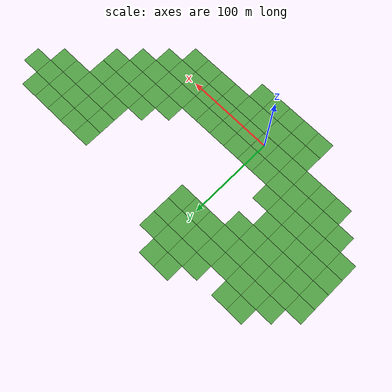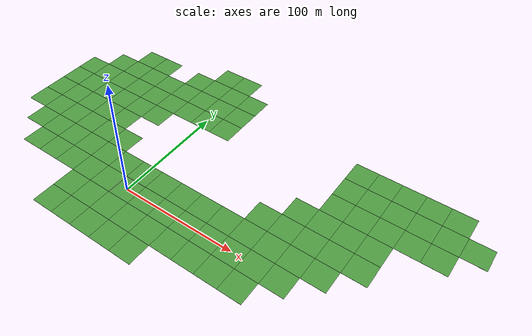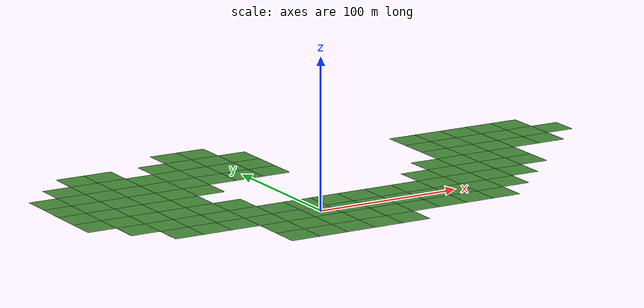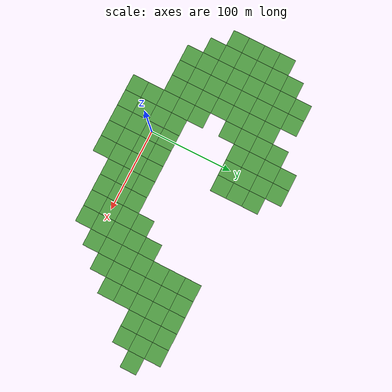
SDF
<sdf version="1.4">
 <world name="valley_town_2">
  <scene>
   <ambient>0.2 0.2 0.2 1.0</ambient>
   <grid>false</grid>
   <sky><clouds><speed>0.1</speed><mean_size>0.1</mean_size></clouds></sky>
  </scene>
  <physics type="ode">
   <gravity>0 0 -9.81</gravity>
   <ode>
    <solver>
     <use_dynamic_moi_rescaling>true</use_dynamic_moi_rescaling>
     <type>quick</type>
     <iters>50</iters>
     <sor>1.4</sor>
    </solver>
    <constraints>
     <cfm>0.0</cfm>
     <erp>0.2</erp>
     <contact_max_correcting_vel>100.0</contact_max_correcting_vel>
     <contact_surface_layer>0.0</contact_surface_layer>
    </constraints>
   </ode>
   <real_time_update_rate>1000</real_time_update_rate>
   <max_step_size>0.001</max_step_size>
  </physics>
  <light type="directional" name="sun">
   <pose>0 0 100 0 0 0</pose>
   <diffuse>0.8 0.8 0.8 1</diffuse>
   <specular>0.9 0.9 0.9 1</specular>
   <attenuation>
    <range>1000</range>
    <constant>0.9</constant>
    <linear>0.01</linear>
    <quadratic>0.001</quadratic>
   </attenuation>
   <direction>0.2 0.2 -0.9</direction>
  </light>
  <include><uri>model://grass_plane_2</uri></include>
  <model name="road_boxes">
   <static>true</static>
   <link name="link">
    <collision name="collision_1">
     <pose>-25.5 5.1 0 0 0 -0.197</pose>
     <geometry><box><size>51 7.34 0.02</size></box></geometry>
     <surface><friction><ode><mu>100</mu><mu2>50</mu2></ode></friction></surface>
    </collision>
    <collision name="collision_2">
     <pose>-75 30 0 0 0 -0.6747</pose>
     <geometry><box><size>66.0 7.34 0.02</size></box></geometry>
     <surface><friction><ode><mu>100</mu><mu2>50</mu2></ode></friction></surface>
    </collision>
    <collision name="collision_3">
     <pose>-100 76 0 0 0 0</pose>
     <geometry><box><size>7.34 56 0.02</size></box></geometry>
     <surface><friction><ode><mu>100</mu><mu2>50</mu2></ode></friction></surface>
    </collision>
    <collision name="collision_4">
     <pose>-50 115 0 0 0 0.291</pose>
     <geometry><box><size>105 7.34 0.02</size></box></geometry>
     <surface><friction><ode><mu>100</mu><mu2>50</mu2></ode></friction></surface>
    </collision>
    <collision name="collision_5">
     <pose>-5 135 0 0 0 1.8505</pose>
     <geometry><box><size>6 5 0.02</size></box></geometry>
     <surface><friction><ode><mu>100</mu><mu2>50</mu2></ode></friction></surface>
    </collision>
   </link>
  </model>
 </world>
</sdf>

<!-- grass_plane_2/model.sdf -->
<sdf version='1.4'>
  <model name='grass_plane_2'>
    <static>true</static>
    <link name='link'>
      <collision name='collision'>
        <geometry>
          <plane>
            <normal>0 0 1</normal>
            <size>500 500</size>
          </plane>
        </geometry>
        <surface>
          <friction>
            <ode>
              <mu>0.5</mu>
              <mu2>.5</mu2>
            </ode>
          </friction>
        </surface>
      </collision>

      <visual name='visual_1'>
        <pose>0 0 0 0 0 0</pose>
        <cast_shadows>false</cast_shadows>
        <geometry>
          <plane>
            <normal>0 0 1</normal>
            <size>20 20</size>
          </plane>
        </geometry>
        <material>
          <script>
            <uri>model://grass_plane_1/materials/scripts</uri>
            <uri>model://grass_plane_1/materials/textures</uri>
            <name>vrc/grass</name>
          </script>
        </material>
      </visual>
      <visual name='visual_2'>
        <pose>0 100 0 0 0 0</pose>
        <cast_shadows>false</cast_shadows>
        <geometry>
          <plane>
            <normal>0 0 1</normal>
            <size>20 20</size>
          </plane>
        </geometry>
        <material>
          <script>
            <uri>model://grass_plane_1/materials/scripts</uri>
            <uri>model://grass_plane_1/materials/textures</uri>
            <name>vrc/grass</name>
          </script>
        </material>
      </visual>
      <visual name='visual_3'>
        <pose>0 120 0 0 0 0</pose>
        <cast_shadows>false</cast_shadows>
        <geometry>
          <plane>
            <normal>0 0 1</normal>
            <size>20 20</size>
          </plane>
        </geometry>
        <material>
          <script>
            <uri>model://grass_plane_1/materials/scripts</uri>
            <uri>model://grass_plane_1/materials/textures</uri>
            <name>vrc/grass</name>
          </script>
        </material>
      </visual>
      <visual name='visual_4'>
        <pose>0 140 0 0 0 0</pose>
        <cast_shadows>false</cast_shadows>
        <geometry>
          <plane>
            <normal>0 0 1</normal>
            <size>20 20</size>
          </plane>
        </geometry>
        <material>
          <script>
            <uri>model://grass_plane_1/materials/scripts</uri>
            <uri>model://grass_plane_1/materials/textures</uri>
            <name>vrc/grass</name>
          </script>
        </material>
      </visual>
      <visual name='visual_5'>
        <pose>0 160 0 0 0 0</pose>
        <cast_shadows>false</cast_shadows>
        <geometry>
          <plane>
            <normal>0 0 1</normal>
            <size>20 20</size>
          </plane>
        </geometry>
        <material>
          <script>
            <uri>model://grass_plane_1/materials/scripts</uri>
            <uri>model://grass_plane_1/materials/textures</uri>
            <name>vrc/grass</name>
          </script>
        </material>
      </visual>
      <visual name='visual_6'>
        <pose>0 20 0 0 0 0</pose>
        <cast_shadows>false</cast_shadows>
        <geometry>
          <plane>
            <normal>0 0 1</normal>
            <size>20 20</size>
          </plane>
        </geometry>
        <material>
          <script>
            <uri>model://grass_plane_1/materials/scripts</uri>
            <uri>model://grass_plane_1/materials/textures</uri>
            <name>vrc/grass</name>
          </script>
        </material>
      </visual>
      <visual name='visual_7'>
        <pose>0 -20 0 0 0 0</pose>
        <cast_shadows>false</cast_shadows>
        <geometry>
          <plane>
            <normal>0 0 1</normal>
            <size>20 20</size>
          </plane>
        </geometry>
        <material>
          <script>
            <uri>model://grass_plane_1/materials/scripts</uri>
            <uri>model://grass_plane_1/materials/textures</uri>
            <name>vrc/grass</name>
          </script>
        </material>
      </visual>
      <visual name='visual_8'>
        <pose>0 -40 0 0 0 0</pose>
        <cast_shadows>false</cast_shadows>
        <geometry>
          <plane>
            <normal>0 0 1</normal>
            <size>20 20</size>
          </plane>
        </geometry>
        <material>
          <script>
            <uri>model://grass_plane_1/materials/scripts</uri>
            <uri>model://grass_plane_1/materials/textures</uri>
            <name>vrc/grass</name>
          </script>
        </material>
      </visual>
      <visual name='visual_9'>
        <pose>-100 0 0 0 0 0</pose>
        <cast_shadows>false</cast_shadows>
        <geometry>
          <plane>
            <normal>0 0 1</normal>
            <size>20 20</size>
          </plane>
        </geometry>
        <material>
          <script>
            <uri>model://grass_plane_1/materials/scripts</uri>
            <uri>model://grass_plane_1/materials/textures</uri>
            <name>vrc/grass</name>
          </script>
        </material>
      </visual>
      <visual name='visual_10'>
        <pose>100 0 0 0 0 0</pose>
        <cast_shadows>false</cast_shadows>
        <geometry>
          <plane>
            <normal>0 0 1</normal>
            <size>20 20</size>
          </plane>
        </geometry>
        <material>
          <script>
            <uri>model://grass_plane_1/materials/scripts</uri>
            <uri>model://grass_plane_1/materials/textures</uri>
            <name>vrc/grass</name>
          </script>
        </material>
      </visual>
      <visual name='visual_11'>
        <pose>-100 100 0 0 0 0</pose>
        <cast_shadows>false</cast_shadows>
        <geometry>
          <plane>
            <normal>0 0 1</normal>
            <size>20 20</size>
          </plane>
        </geometry>
        <material>
          <script>
            <uri>model://grass_plane_1/materials/scripts</uri>
            <uri>model://grass_plane_1/materials/textures</uri>
            <name>vrc/grass</name>
          </script>
        </material>
      </visual>
      <visual name='visual_12'>
        <pose>-100 120 0 0 0 0</pose>
        <cast_shadows>false</cast_shadows>
        <geometry>
          <plane>
            <normal>0 0 1</normal>
            <size>20 20</size>
          </plane>
        </geometry>
        <material>
          <script>
            <uri>model://grass_plane_1/materials/scripts</uri>
            <uri>model://grass_plane_1/materials/textures</uri>
            <name>vrc/grass</name>
          </script>
        </material>
      </visual>
      <visual name='visual_13'>
        <pose>-100 140 0 0 0 0</pose>
        <cast_shadows>false</cast_shadows>
        <geometry>
          <plane>
            <normal>0 0 1</normal>
            <size>20 20</size>
          </plane>
        </geometry>
        <material>
          <script>
            <uri>model://grass_plane_1/materials/scripts</uri>
            <uri>model://grass_plane_1/materials/textures</uri>
            <name>vrc/grass</name>
          </script>
        </material>
      </visual>
      <visual name='visual_14'>
        <pose>-100 20 0 0 0 0</pose>
        <cast_shadows>false</cast_shadows>
        <geometry>
          <plane>
            <normal>0 0 1</normal>
            <size>20 20</size>
          </plane>
        </geometry>
        <material>
          <script>
            <uri>model://grass_plane_1/materials/scripts</uri>
            <uri>model://grass_plane_1/materials/textures</uri>
            <name>vrc/grass</name>
          </script>
        </material>
      </visual>
      <visual name='visual_15'>
        <pose>100 20 0 0 0 0</pose>
        <cast_shadows>false</cast_shadows>
        <geometry>
          <plane>
            <normal>0 0 1</normal>
            <size>20 20</size>
          </plane>
        </geometry>
        <material>
          <script>
            <uri>model://grass_plane_1/materials/scripts</uri>
            <uri>model://grass_plane_1/materials/textures</uri>
            <name>vrc/grass</name>
          </script>
        </material>
      </visual>
      <visual name='visual_16'>
        <pose>100 -20 0 0 0 0</pose>
        <cast_shadows>false</cast_shadows>
        <geometry>
          <plane>
            <normal>0 0 1</normal>
            <size>20 20</size>
          </plane>
        </geometry>
        <material>
          <script>
            <uri>model://grass_plane_1/materials/scripts</uri>
            <uri>model://grass_plane_1/materials/textures</uri>
            <name>vrc/grass</name>
          </script>
        </material>
      </visual>
      <visual name='visual_17'>
        <pose>-100 40 0 0 0 0</pose>
        <cast_shadows>false</cast_shadows>
        <geometry>
          <plane>
            <normal>0 0 1</normal>
            <size>20 20</size>
          </plane>
        </geometry>
        <material>
          <script>
            <uri>model://grass_plane_1/materials/scripts</uri>
            <uri>model://grass_plane_1/materials/textures</uri>
            <name>vrc/grass</name>
          </script>
        </material>
      </visual>
      <visual name='visual_18'>
        <pose>100 40 0 0 0 0</pose>
        <cast_shadows>false</cast_shadows>
        <geometry>
          <plane>
            <normal>0 0 1</normal>
            <size>20 20</size>
          </plane>
        </geometry>
        <material>
          <script>
            <uri>model://grass_plane_1/materials/scripts</uri>
            <uri>model://grass_plane_1/materials/textures</uri>
            <name>vrc/grass</name>
          </script>
        </material>
      </visual>
      <visual name='visual_19'>
        <pose>-100 60 0 0 0 0</pose>
        <cast_shadows>false</cast_shadows>
        <geometry>
          <plane>
            <normal>0 0 1</normal>
            <size>20 20</size>
          </plane>
        </geometry>
        <material>
          <script>
            <uri>model://grass_plane_1/materials/scripts</uri>
            <uri>model://grass_plane_1/materials/textures</uri>
            <name>vrc/grass</name>
          </script>
        </material>
      </visual>
      <visual name='visual_20'>
        <pose>-100 80 0 0 0 0</pose>
        <cast_shadows>false</cast_shadows>
        <geometry>
          <plane>
            <normal>0 0 1</normal>
            <size>20 20</size>
          </plane>
        </geometry>
        <material>
          <script>
            <uri>model://grass_plane_1/materials/scripts</uri>
            <uri>model://grass_plane_1/materials/textures</uri>
            <name>vrc/grass</name>
          </script>
        </material>
      </visual>
      <visual name='visual_21'>
        <pose>120 0 0 0 0 0</pose>
        <cast_shadows>false</cast_shadows>
        <geometry>
          <plane>
            <normal>0 0 1</normal>
            <size>20 20</size>
          </plane>
        </geometry>
        <material>
          <script>
            <uri>model://grass_plane_1/materials/scripts</uri>
            <uri>model://grass_plane_1/materials/textures</uri>
            <name>vrc/grass</name>
          </script>
        </material>
      </visual>
      <visual name='visual_22'>
        <pose>-120 100 0 0 0 0</pose>
        <cast_shadows>false</cast_shadows>
        <geometry>
          <plane>
            <normal>0 0 1</normal>
            <size>20 20</size>
          </plane>
        </geometry>
        <material>
          <script>
            <uri>model://grass_plane_1/materials/scripts</uri>
            <uri>model://grass_plane_1/materials/textures</uri>
            <name>vrc/grass</name>
          </script>
        </material>
      </visual>
      <visual name='visual_23'>
        <pose>-120 120 0 0 0 0</pose>
        <cast_shadows>false</cast_shadows>
        <geometry>
          <plane>
            <normal>0 0 1</normal>
            <size>20 20</size>
          </plane>
        </geometry>
        <material>
          <script>
            <uri>model://grass_plane_1/materials/scripts</uri>
            <uri>model://grass_plane_1/materials/textures</uri>
            <name>vrc/grass</name>
          </script>
        </material>
      </visual>
      <visual name='visual_24'>
        <pose>-120 20 0 0 0 0</pose>
        <cast_shadows>false</cast_shadows>
        <geometry>
          <plane>
            <normal>0 0 1</normal>
            <size>20 20</size>
          </plane>
        </geometry>
        <material>
          <script>
            <uri>model://grass_plane_1/materials/scripts</uri>
            <uri>model://grass_plane_1/materials/textures</uri>
            <name>vrc/grass</name>
          </script>
        </material>
      </visual>
      <visual name='visual_25'>
        <pose>120 20 0 0 0 0</pose>
        <cast_shadows>false</cast_shadows>
        <geometry>
          <plane>
            <normal>0 0 1</normal>
            <size>20 20</size>
          </plane>
        </geometry>
        <material>
          <script>
            <uri>model://grass_plane_1/materials/scripts</uri>
            <uri>model://grass_plane_1/materials/textures</uri>
            <name>vrc/grass</name>
          </script>
        </material>
      </visual>
      <visual name='visual_26'>
        <pose>120 -20 0 0 0 0</pose>
        <cast_shadows>false</cast_shadows>
        <geometry>
          <plane>
            <normal>0 0 1</normal>
            <size>20 20</size>
          </plane>
        </geometry>
        <material>
          <script>
            <uri>model://grass_plane_1/materials/scripts</uri>
            <uri>model://grass_plane_1/materials/textures</uri>
            <name>vrc/grass</name>
          </script>
        </material>
      </visual>
      <visual name='visual_27'>
        <pose>-120 40 0 0 0 0</pose>
        <cast_shadows>false</cast_shadows>
        <geometry>
          <plane>
            <normal>0 0 1</normal>
            <size>20 20</size>
          </plane>
        </geometry>
        <material>
          <script>
            <uri>model://grass_plane_1/materials/scripts</uri>
            <uri>model://grass_plane_1/materials/textures</uri>
            <name>vrc/grass</name>
          </script>
        </material>
      </visual>
      <visual name='visual_28'>
        <pose>120 40 0 0 0 0</pose>
        <cast_shadows>false</cast_shadows>
        <geometry>
          <plane>
            <normal>0 0 1</normal>
            <size>20 20</size>
          </plane>
        </geometry>
        <material>
          <script>
            <uri>model://grass_plane_1/materials/scripts</uri>
            <uri>model://grass_plane_1/materials/textures</uri>
            <name>vrc/grass</name>
          </script>
        </material>
      </visual>
      <visual name='visual_29'>
        <pose>-120 60 0 0 0 0</pose>
        <cast_shadows>false</cast_shadows>
        <geometry>
          <plane>
            <normal>0 0 1</normal>
            <size>20 20</size>
          </plane>
        </geometry>
        <material>
          <script>
            <uri>model://grass_plane_1/materials/scripts</uri>
            <uri>model://grass_plane_1/materials/textures</uri>
            <name>vrc/grass</name>
          </script>
        </material>
      </visual>
      <visual name='visual_30'>
        <pose>120 60 0 0 0 0</pose>
        <cast_shadows>false</cast_shadows>
        <geometry>
          <plane>
            <normal>0 0 1</normal>
            <size>20 20</size>
          </plane>
        </geometry>
        <material>
          <script>
            <uri>model://grass_plane_1/materials/scripts</uri>
            <uri>model://grass_plane_1/materials/textures</uri>
            <name>vrc/grass</name>
          </script>
        </material>
      </visual>
      <visual name='visual_31'>
        <pose>-120 80 0 0 0 0</pose>
        <cast_shadows>false</cast_shadows>
        <geometry>
          <plane>
            <normal>0 0 1</normal>
            <size>20 20</size>
          </plane>
        </geometry>
        <material>
          <script>
            <uri>model://grass_plane_1/materials/scripts</uri>
            <uri>model://grass_plane_1/materials/textures</uri>
            <name>vrc/grass</name>
          </script>
        </material>
      </visual>
      <visual name='visual_32'>
        <pose>140 0 0 0 0 0</pose>
        <cast_shadows>false</cast_shadows>
        <geometry>
          <plane>
            <normal>0 0 1</normal>
            <size>20 20</size>
          </plane>
        </geometry>
        <material>
          <script>
            <uri>model://grass_plane_1/materials/scripts</uri>
            <uri>model://grass_plane_1/materials/textures</uri>
            <name>vrc/grass</name>
          </script>
        </material>
      </visual>
      <visual name='visual_33'>
        <pose>-140 100 0 0 0 0</pose>
        <cast_shadows>false</cast_shadows>
        <geometry>
          <plane>
            <normal>0 0 1</normal>
            <size>20 20</size>
          </plane>
        </geometry>
        <material>
          <script>
            <uri>model://grass_plane_1/materials/scripts</uri>
            <uri>model://grass_plane_1/materials/textures</uri>
            <name>vrc/grass</name>
          </script>
        </material>
      </visual>
      <visual name='visual_34'>
        <pose>140 100 0 0 0 0</pose>
        <cast_shadows>false</cast_shadows>
        <geometry>
          <plane>
            <normal>0 0 1</normal>
            <size>20 20</size>
          </plane>
        </geometry>
        <material>
          <script>
            <uri>model://grass_plane_1/materials/scripts</uri>
            <uri>model://grass_plane_1/materials/textures</uri>
            <name>vrc/grass</name>
          </script>
        </material>
      </visual>
      <visual name='visual_35'>
        <pose>140 120 0 0 0 0</pose>
        <cast_shadows>false</cast_shadows>
        <geometry>
          <plane>
            <normal>0 0 1</normal>
            <size>20 20</size>
          </plane>
        </geometry>
        <material>
          <script>
            <uri>model://grass_plane_1/materials/scripts</uri>
            <uri>model://grass_plane_1/materials/textures</uri>
            <name>vrc/grass</name>
          </script>
        </material>
      </visual>
      <visual name='visual_36'>
        <pose>140 20 0 0 0 0</pose>
        <cast_shadows>false</cast_shadows>
        <geometry>
          <plane>
            <normal>0 0 1</normal>
            <size>20 20</size>
          </plane>
        </geometry>
        <material>
          <script>
            <uri>model://grass_plane_1/materials/scripts</uri>
            <uri>model://grass_plane_1/materials/textures</uri>
            <name>vrc/grass</name>
          </script>
        </material>
      </visual>
      <visual name='visual_37'>
        <pose>-140 40 0 0 0 0</pose>
        <cast_shadows>false</cast_shadows>
        <geometry>
          <plane>
            <normal>0 0 1</normal>
            <size>20 20</size>
          </plane>
        </geometry>
        <material>
          <script>
            <uri>model://grass_plane_1/materials/scripts</uri>
            <uri>model://grass_plane_1/materials/textures</uri>
            <name>vrc/grass</name>
          </script>
        </material>
      </visual>
      <visual name='visual_38'>
        <pose>140 40 0 0 0 0</pose>
        <cast_shadows>false</cast_shadows>
        <geometry>
          <plane>
            <normal>0 0 1</normal>
            <size>20 20</size>
          </plane>
        </geometry>
        <material>
          <script>
            <uri>model://grass_plane_1/materials/scripts</uri>
            <uri>model://grass_plane_1/materials/textures</uri>
            <name>vrc/grass</name>
          </script>
        </material>
      </visual>
      <visual name='visual_39'>
        <pose>-140 60 0 0 0 0</pose>
        <cast_shadows>false</cast_shadows>
        <geometry>
          <plane>
            <normal>0 0 1</normal>
            <size>20 20</size>
          </plane>
        </geometry>
        <material>
          <script>
            <uri>model://grass_plane_1/materials/scripts</uri>
            <uri>model://grass_plane_1/materials/textures</uri>
            <name>vrc/grass</name>
          </script>
        </material>
      </visual>
      <visual name='visual_40'>
        <pose>140 60 0 0 0 0</pose>
        <cast_shadows>false</cast_shadows>
        <geometry>
          <plane>
            <normal>0 0 1</normal>
            <size>20 20</size>
          </plane>
        </geometry>
        <material>
          <script>
            <uri>model://grass_plane_1/materials/scripts</uri>
            <uri>model://grass_plane_1/materials/textures</uri>
            <name>vrc/grass</name>
          </script>
        </material>
      </visual>
      <visual name='visual_41'>
        <pose>-140 80 0 0 0 0</pose>
        <cast_shadows>false</cast_shadows>
        <geometry>
          <plane>
            <normal>0 0 1</normal>
            <size>20 20</size>
          </plane>
        </geometry>
        <material>
          <script>
            <uri>model://grass_plane_1/materials/scripts</uri>
            <uri>model://grass_plane_1/materials/textures</uri>
            <name>vrc/grass</name>
          </script>
        </material>
      </visual>
      <visual name='visual_42'>
        <pose>140 80 0 0 0 0</pose>
        <cast_shadows>false</cast_shadows>
        <geometry>
          <plane>
            <normal>0 0 1</normal>
            <size>20 20</size>
          </plane>
        </geometry>
        <material>
          <script>
            <uri>model://grass_plane_1/materials/scripts</uri>
            <uri>model://grass_plane_1/materials/textures</uri>
            <name>vrc/grass</name>
          </script>
        </material>
      </visual>
      <visual name='visual_43'>
        <pose>160 100 0 0 0 0</pose>
        <cast_shadows>false</cast_shadows>
        <geometry>
          <plane>
            <normal>0 0 1</normal>
            <size>20 20</size>
          </plane>
        </geometry>
        <material>
          <script>
            <uri>model://grass_plane_1/materials/scripts</uri>
            <uri>model://grass_plane_1/materials/textures</uri>
            <name>vrc/grass</name>
          </script>
        </material>
      </visual>
      <visual name='visual_44'>
        <pose>160 120 0 0 0 0</pose>
        <cast_shadows>false</cast_shadows>
        <geometry>
          <plane>
            <normal>0 0 1</normal>
            <size>20 20</size>
          </plane>
        </geometry>
        <material>
          <script>
            <uri>model://grass_plane_1/materials/scripts</uri>
            <uri>model://grass_plane_1/materials/textures</uri>
            <name>vrc/grass</name>
          </script>
        </material>
      </visual>
      <visual name='visual_45'>
        <pose>160 20 0 0 0 0</pose>
        <cast_shadows>false</cast_shadows>
        <geometry>
          <plane>
            <normal>0 0 1</normal>
            <size>20 20</size>
          </plane>
        </geometry>
        <material>
          <script>
            <uri>model://grass_plane_1/materials/scripts</uri>
            <uri>model://grass_plane_1/materials/textures</uri>
            <name>vrc/grass</name>
          </script>
        </material>
      </visual>
      <visual name='visual_46'>
        <pose>160 40 0 0 0 0</pose>
        <cast_shadows>false</cast_shadows>
        <geometry>
          <plane>
            <normal>0 0 1</normal>
            <size>20 20</size>
          </plane>
        </geometry>
        <material>
          <script>
            <uri>model://grass_plane_1/materials/scripts</uri>
            <uri>model://grass_plane_1/materials/textures</uri>
            <name>vrc/grass</name>
          </script>
        </material>
      </visual>
      <visual name='visual_47'>
        <pose>160 60 0 0 0 0</pose>
        <cast_shadows>false</cast_shadows>
        <geometry>
          <plane>
            <normal>0 0 1</normal>
            <size>20 20</size>
          </plane>
        </geometry>
        <material>
          <script>
            <uri>model://grass_plane_1/materials/scripts</uri>
            <uri>model://grass_plane_1/materials/textures</uri>
            <name>vrc/grass</name>
          </script>
        </material>
      </visual>
      <visual name='visual_48'>
        <pose>160 80 0 0 0 0</pose>
        <cast_shadows>false</cast_shadows>
        <geometry>
          <plane>
            <normal>0 0 1</normal>
            <size>20 20</size>
          </plane>
        </geometry>
        <material>
          <script>
            <uri>model://grass_plane_1/materials/scripts</uri>
            <uri>model://grass_plane_1/materials/textures</uri>
            <name>vrc/grass</name>
          </script>
        </material>
      </visual>
      <visual name='visual_49'>
        <pose>180 100 0 0 0 0</pose>
        <cast_shadows>false</cast_shadows>
        <geometry>
          <plane>
            <normal>0 0 1</normal>
            <size>20 20</size>
          </plane>
        </geometry>
        <material>
          <script>
            <uri>model://grass_plane_1/materials/scripts</uri>
            <uri>model://grass_plane_1/materials/textures</uri>
            <name>vrc/grass</name>
          </script>
        </material>
      </visual>
      <visual name='visual_50'>
        <pose>180 120 0 0 0 0</pose>
        <cast_shadows>false</cast_shadows>
        <geometry>
          <plane>
            <normal>0 0 1</normal>
            <size>20 20</size>
          </plane>
        </geometry>
        <material>
          <script>
            <uri>model://grass_plane_1/materials/scripts</uri>
            <uri>model://grass_plane_1/materials/textures</uri>
            <name>vrc/grass</name>
          </script>
        </material>
      </visual>
      <visual name='visual_51'>
        <pose>180 40 0 0 0 0</pose>
        <cast_shadows>false</cast_shadows>
        <geometry>
          <plane>
            <normal>0 0 1</normal>
            <size>20 20</size>
          </plane>
        </geometry>
        <material>
          <script>
            <uri>model://grass_plane_1/materials/scripts</uri>
            <uri>model://grass_plane_1/materials/textures</uri>
            <name>vrc/grass</name>
          </script>
        </material>
      </visual>
      <visual name='visual_52'>
        <pose>180 60 0 0 0 0</pose>
        <cast_shadows>false</cast_shadows>
        <geometry>
          <plane>
            <normal>0 0 1</normal>
            <size>20 20</size>
          </plane>
        </geometry>
        <material>
          <script>
            <uri>model://grass_plane_1/materials/scripts</uri>
            <uri>model://grass_plane_1/materials/textures</uri>
            <name>vrc/grass</name>
          </script>
        </material>
      </visual>
      <visual name='visual_53'>
        <pose>180 80 0 0 0 0</pose>
        <cast_shadows>false</cast_shadows>
        <geometry>
          <plane>
            <normal>0 0 1</normal>
            <size>20 20</size>
          </plane>
        </geometry>
        <material>
          <script>
            <uri>model://grass_plane_1/materials/scripts</uri>
            <uri>model://grass_plane_1/materials/textures</uri>
            <name>vrc/grass</name>
          </script>
        </material>
      </visual>
      <visual name='visual_54'>
        <pose>-20 0 0 0 0 0</pose>
        <cast_shadows>false</cast_shadows>
        <geometry>
          <plane>
            <normal>0 0 1</normal>
            <size>20 20</size>
          </plane>
        </geometry>
        <material>
          <script>
            <uri>model://grass_plane_1/materials/scripts</uri>
            <uri>model://grass_plane_1/materials/textures</uri>
            <name>vrc/grass</name>
          </script>
        </material>
      </visual>
      <visual name='visual_55'>
        <pose>20 0 0 0 0 0</pose>
        <cast_shadows>false</cast_shadows>
        <geometry>
          <plane>
            <normal>0 0 1</normal>
            <size>20 20</size>
          </plane>
        </geometry>
        <material>
          <script>
            <uri>model://grass_plane_1/materials/scripts</uri>
            <uri>model://grass_plane_1/materials/textures</uri>
            <name>vrc/grass</name>
          </script>
        </material>
      </visual>
      <visual name='visual_56'>
        <pose>200 100 0 0 0 0</pose>
        <cast_shadows>false</cast_shadows>
        <geometry>
          <plane>
            <normal>0 0 1</normal>
            <size>20 20</size>
          </plane>
        </geometry>
        <material>
          <script>
            <uri>model://grass_plane_1/materials/scripts</uri>
            <uri>model://grass_plane_1/materials/textures</uri>
            <name>vrc/grass</name>
          </script>
        </material>
      </visual>
      <visual name='visual_57'>
        <pose>200 120 0 0 0 0</pose>
        <cast_shadows>false</cast_shadows>
        <geometry>
          <plane>
            <normal>0 0 1</normal>
            <size>20 20</size>
          </plane>
        </geometry>
        <material>
          <script>
            <uri>model://grass_plane_1/materials/scripts</uri>
            <uri>model://grass_plane_1/materials/textures</uri>
            <name>vrc/grass</name>
          </script>
        </material>
      </visual>
      <visual name='visual_58'>
        <pose>200 80 0 0 0 0</pose>
        <cast_shadows>false</cast_shadows>
        <geometry>
          <plane>
            <normal>0 0 1</normal>
            <size>20 20</size>
          </plane>
        </geometry>
        <material>
          <script>
            <uri>model://grass_plane_1/materials/scripts</uri>
            <uri>model://grass_plane_1/materials/textures</uri>
            <name>vrc/grass</name>
          </script>
        </material>
      </visual>
      <visual name='visual_59'>
        <pose>-20 100 0 0 0 0</pose>
        <cast_shadows>false</cast_shadows>
        <geometry>
          <plane>
            <normal>0 0 1</normal>
            <size>20 20</size>
          </plane>
        </geometry>
        <material>
          <script>
            <uri>model://grass_plane_1/materials/scripts</uri>
            <uri>model://grass_plane_1/materials/textures</uri>
            <name>vrc/grass</name>
          </script>
        </material>
      </visual>
      <visual name='visual_60'>
        <pose>20 100 0 0 0 0</pose>
        <cast_shadows>false</cast_shadows>
        <geometry>
          <plane>
            <normal>0 0 1</normal>
            <size>20 20</size>
          </plane>
        </geometry>
        <material>
          <script>
            <uri>model://grass_plane_1/materials/scripts</uri>
            <uri>model://grass_plane_1/materials/textures</uri>
            <name>vrc/grass</name>
          </script>
        </material>
      </visual>
      <visual name='visual_61'>
        <pose>-20 120 0 0 0 0</pose>
        <cast_shadows>false</cast_shadows>
        <geometry>
          <plane>
            <normal>0 0 1</normal>
            <size>20 20</size>
          </plane>
        </geometry>
        <material>
          <script>
            <uri>model://grass_plane_1/materials/scripts</uri>
            <uri>model://grass_plane_1/materials/textures</uri>
            <name>vrc/grass</name>
          </script>
        </material>
      </visual>
      <visual name='visual_62'>
        <pose>20 120 0 0 0 0</pose>
        <cast_shadows>false</cast_shadows>
        <geometry>
          <plane>
            <normal>0 0 1</normal>
            <size>20 20</size>
          </plane>
        </geometry>
        <material>
          <script>
            <uri>model://grass_plane_1/materials/scripts</uri>
            <uri>model://grass_plane_1/materials/textures</uri>
            <name>vrc/grass</name>
          </script>
        </material>
      </visual>
      <visual name='visual_63'>
        <pose>-20 140 0 0 0 0</pose>
        <cast_shadows>false</cast_shadows>
        <geometry>
          <plane>
            <normal>0 0 1</normal>
            <size>20 20</size>
          </plane>
        </geometry>
        <material>
          <script>
            <uri>model://grass_plane_1/materials/scripts</uri>
            <uri>model://grass_plane_1/materials/textures</uri>
            <name>vrc/grass</name>
          </script>
        </material>
      </visual>
      <visual name='visual_64'>
        <pose>20 140 0 0 0 0</pose>
        <cast_shadows>false</cast_shadows>
        <geometry>
          <plane>
            <normal>0 0 1</normal>
            <size>20 20</size>
          </plane>
        </geometry>
        <material>
          <script>
            <uri>model://grass_plane_1/materials/scripts</uri>
            <uri>model://grass_plane_1/materials/textures</uri>
            <name>vrc/grass</name>
          </script>
        </material>
      </visual>
      <visual name='visual_65'>
        <pose>-20 160 0 0 0 0</pose>
        <cast_shadows>false</cast_shadows>
        <geometry>
          <plane>
            <normal>0 0 1</normal>
            <size>20 20</size>
          </plane>
        </geometry>
        <material>
          <script>
            <uri>model://grass_plane_1/materials/scripts</uri>
            <uri>model://grass_plane_1/materials/textures</uri>
            <name>vrc/grass</name>
          </script>
        </material>
      </visual>
      <visual name='visual_66'>
        <pose>-20 20 0 0 0 0</pose>
        <cast_shadows>false</cast_shadows>
        <geometry>
          <plane>
            <normal>0 0 1</normal>
            <size>20 20</size>
          </plane>
        </geometry>
        <material>
          <script>
            <uri>model://grass_plane_1/materials/scripts</uri>
            <uri>model://grass_plane_1/materials/textures</uri>
            <name>vrc/grass</name>
          </script>
        </material>
      </visual>
      <visual name='visual_67'>
        <pose>-20 -20 0 0 0 0</pose>
        <cast_shadows>false</cast_shadows>
        <geometry>
          <plane>
            <normal>0 0 1</normal>
            <size>20 20</size>
          </plane>
        </geometry>
        <material>
          <script>
            <uri>model://grass_plane_1/materials/scripts</uri>
            <uri>model://grass_plane_1/materials/textures</uri>
            <name>vrc/grass</name>
          </script>
        </material>
      </visual>
      <visual name='visual_68'>
        <pose>20 20 0 0 0 0</pose>
        <cast_shadows>false</cast_shadows>
        <geometry>
          <plane>
            <normal>0 0 1</normal>
            <size>20 20</size>
          </plane>
        </geometry>
        <material>
          <script>
            <uri>model://grass_plane_1/materials/scripts</uri>
            <uri>model://grass_plane_1/materials/textures</uri>
            <name>vrc/grass</name>
          </script>
        </material>
      </visual>
      <visual name='visual_69'>
        <pose>20 -20 0 0 0 0</pose>
        <cast_shadows>false</cast_shadows>
        <geometry>
          <plane>
            <normal>0 0 1</normal>
            <size>20 20</size>
          </plane>
        </geometry>
        <material>
          <script>
            <uri>model://grass_plane_1/materials/scripts</uri>
            <uri>model://grass_plane_1/materials/textures</uri>
            <name>vrc/grass</name>
          </script>
        </material>
      </visual>
      <visual name='visual_70'>
        <pose>-20 -40 0 0 0 0</pose>
        <cast_shadows>false</cast_shadows>
        <geometry>
          <plane>
            <normal>0 0 1</normal>
            <size>20 20</size>
          </plane>
        </geometry>
        <material>
          <script>
            <uri>model://grass_plane_1/materials/scripts</uri>
            <uri>model://grass_plane_1/materials/textures</uri>
            <name>vrc/grass</name>
          </script>
        </material>
      </visual>
      <visual name='visual_71'>
        <pose>20 -40 0 0 0 0</pose>
        <cast_shadows>false</cast_shadows>
        <geometry>
          <plane>
            <normal>0 0 1</normal>
            <size>20 20</size>
          </plane>
        </geometry>
        <material>
          <script>
            <uri>model://grass_plane_1/materials/scripts</uri>
            <uri>model://grass_plane_1/materials/textures</uri>
            <name>vrc/grass</name>
          </script>
        </material>
      </visual>
      <visual name='visual_72'>
        <pose>220 100 0 0 0 0</pose>
        <cast_shadows>false</cast_shadows>
        <geometry>
          <plane>
            <normal>0 0 1</normal>
            <size>20 20</size>
          </plane>
        </geometry>
        <material>
          <script>
            <uri>model://grass_plane_1/materials/scripts</uri>
            <uri>model://grass_plane_1/materials/textures</uri>
            <name>vrc/grass</name>
          </script>
        </material>
      </visual>
      <visual name='visual_73'>
        <pose>220 120 0 0 0 0</pose>
        <cast_shadows>false</cast_shadows>
        <geometry>
          <plane>
            <normal>0 0 1</normal>
            <size>20 20</size>
          </plane>
        </geometry>
        <material>
          <script>
            <uri>model://grass_plane_1/materials/scripts</uri>
            <uri>model://grass_plane_1/materials/textures</uri>
            <name>vrc/grass</name>
          </script>
        </material>
      </visual>
      <visual name='visual_74'>
        <pose>220 80 0 0 0 0</pose>
        <cast_shadows>false</cast_shadows>
        <geometry>
          <plane>
            <normal>0 0 1</normal>
            <size>20 20</size>
          </plane>
        </geometry>
        <material>
          <script>
            <uri>model://grass_plane_1/materials/scripts</uri>
            <uri>model://grass_plane_1/materials/textures</uri>
            <name>vrc/grass</name>
          </script>
        </material>
      </visual>
      <visual name='visual_75'>
        <pose>240 100 0 0 0 0</pose>
        <cast_shadows>false</cast_shadows>
        <geometry>
          <plane>
            <normal>0 0 1</normal>
            <size>20 20</size>
          </plane>
        </geometry>
        <material>
          <script>
            <uri>model://grass_plane_1/materials/scripts</uri>
            <uri>model://grass_plane_1/materials/textures</uri>
            <name>vrc/grass</name>
          </script>
        </material>
      </visual>
      <visual name='visual_76'>
        <pose>-40 0 0 0 0 0</pose>
        <cast_shadows>false</cast_shadows>
        <geometry>
          <plane>
            <normal>0 0 1</normal>
            <size>20 20</size>
          </plane>
        </geometry>
        <material>
          <script>
            <uri>model://grass_plane_1/materials/scripts</uri>
            <uri>model://grass_plane_1/materials/textures</uri>
            <name>vrc/grass</name>
          </script>
        </material>
      </visual>
      <visual name='visual_77'>
        <pose>40 0 0 0 0 0</pose>
        <cast_shadows>false</cast_shadows>
        <geometry>
          <plane>
            <normal>0 0 1</normal>
            <size>20 20</size>
          </plane>
        </geometry>
        <material>
          <script>
            <uri>model://grass_plane_1/materials/scripts</uri>
            <uri>model://grass_plane_1/materials/textures</uri>
            <name>vrc/grass</name>
          </script>
        </material>
      </visual>
      <visual name='visual_78'>
        <pose>-40 100 0 0 0 0</pose>
        <cast_shadows>false</cast_shadows>
        <geometry>
          <plane>
            <normal>0 0 1</normal>
            <size>20 20</size>
          </plane>
        </geometry>
        <material>
          <script>
            <uri>model://grass_plane_1/materials/scripts</uri>
            <uri>model://grass_plane_1/materials/textures</uri>
            <name>vrc/grass</name>
          </script>
        </material>
      </visual>
      <visual name='visual_79'>
        <pose>-40 120 0 0 0 0</pose>
        <cast_shadows>false</cast_shadows>
        <geometry>
          <plane>
            <normal>0 0 1</normal>
            <size>20 20</size>
          </plane>
        </geometry>
        <material>
          <script>
            <uri>model://grass_plane_1/materials/scripts</uri>
            <uri>model://grass_plane_1/materials/textures</uri>
            <name>vrc/grass</name>
          </script>
        </material>
      </visual>
      <visual name='visual_79a'>
        <pose>-40 140 0 0 0 0</pose>
        <cast_shadows>false</cast_shadows>
        <geometry>
          <plane>
            <normal>0 0 1</normal>
            <size>20 20</size>
          </plane>
        </geometry>
        <material>
          <script>
            <uri>model://grass_plane_1/materials/scripts</uri>
            <uri>model://grass_plane_1/materials/textures</uri>
            <name>vrc/grass</name>
          </script>
        </material>
      </visual>

      <visual name='visual_80'>
        <pose>-40 20 0 0 0 0</pose>
        <cast_shadows>false</cast_shadows>
        <geometry>
          <plane>
            <normal>0 0 1</normal>
            <size>20 20</size>
          </plane>
        </geometry>
        <material>
          <script>
            <uri>model://grass_plane_1/materials/scripts</uri>
            <uri>model://grass_plane_1/materials/textures</uri>
            <name>vrc/grass</name>
          </script>
        </material>
      </visual>
      <visual name='visual_81'>
        <pose>-40 -20 0 0 0 0</pose>
        <cast_shadows>false</cast_shadows>
        <geometry>
          <plane>
            <normal>0 0 1</normal>
            <size>20 20</size>
          </plane>
        </geometry>
        <material>
          <script>
            <uri>model://grass_plane_1/materials/scripts</uri>
            <uri>model://grass_plane_1/materials/textures</uri>
            <name>vrc/grass</name>
          </script>
        </material>
      </visual>
      <visual name='visual_82'>
        <pose>40 20 0 0 0 0</pose>
        <cast_shadows>false</cast_shadows>
        <geometry>
          <plane>
            <normal>0 0 1</normal>
            <size>20 20</size>
          </plane>
        </geometry>
        <material>
          <script>
            <uri>model://grass_plane_1/materials/scripts</uri>
            <uri>model://grass_plane_1/materials/textures</uri>
            <name>vrc/grass</name>
          </script>
        </material>
      </visual>
      <visual name='visual_83'>
        <pose>40 -20 0 0 0 0</pose>
        <cast_shadows>false</cast_shadows>
        <geometry>
          <plane>
            <normal>0 0 1</normal>
            <size>20 20</size>
          </plane>
        </geometry>
        <material>
          <script>
            <uri>model://grass_plane_1/materials/scripts</uri>
            <uri>model://grass_plane_1/materials/textures</uri>
            <name>vrc/grass</name>
          </script>
        </material>
      </visual>
      <visual name='visual_84'>
        <pose>-40 40 0 0 0 0</pose>
        <cast_shadows>false</cast_shadows>
        <geometry>
          <plane>
            <normal>0 0 1</normal>
            <size>20 20</size>
          </plane>
        </geometry>
        <material>
          <script>
            <uri>model://grass_plane_1/materials/scripts</uri>
            <uri>model://grass_plane_1/materials/textures</uri>
            <name>vrc/grass</name>
          </script>
        </material>
      </visual>
      <visual name='visual_85'>
        <pose>-40 -40 0 0 0 0</pose>
        <cast_shadows>false</cast_shadows>
        <geometry>
          <plane>
            <normal>0 0 1</normal>
            <size>20 20</size>
          </plane>
        </geometry>
        <material>
          <script>
            <uri>model://grass_plane_1/materials/scripts</uri>
            <uri>model://grass_plane_1/materials/textures</uri>
            <name>vrc/grass</name>
          </script>
        </material>
      </visual>
      <visual name='visual_86'>
        <pose>40 -40 0 0 0 0</pose>
        <cast_shadows>false</cast_shadows>
        <geometry>
          <plane>
            <normal>0 0 1</normal>
            <size>20 20</size>
          </plane>
        </geometry>
        <material>
          <script>
            <uri>model://grass_plane_1/materials/scripts</uri>
            <uri>model://grass_plane_1/materials/textures</uri>
            <name>vrc/grass</name>
          </script>
        </material>
      </visual>
      <visual name='visual_87'>
        <pose>-40 80 0 0 0 0</pose>
        <cast_shadows>false</cast_shadows>
        <geometry>
          <plane>
            <normal>0 0 1</normal>
            <size>20 20</size>
          </plane>
        </geometry>
        <material>
          <script>
            <uri>model://grass_plane_1/materials/scripts</uri>
            <uri>model://grass_plane_1/materials/textures</uri>
            <name>vrc/grass</name>
          </script>
        </material>
      </visual>
      <visual name='visual_88'>
        <pose>-60 0 0 0 0 0</pose>
        <cast_shadows>false</cast_shadows>
        <geometry>
          <plane>
            <normal>0 0 1</normal>
            <size>20 20</size>
          </plane>
        </geometry>
        <material>
          <script>
            <uri>model://grass_plane_1/materials/scripts</uri>
            <uri>model://grass_plane_1/materials/textures</uri>
            <name>vrc/grass</name>
          </script>
        </material>
      </visual>
      <visual name='visual_89'>
        <pose>60 0 0 0 0 0</pose>
        <cast_shadows>false</cast_shadows>
        <geometry>
          <plane>
            <normal>0 0 1</normal>
            <size>20 20</size>
          </plane>
        </geometry>
        <material>
          <script>
            <uri>model://grass_plane_1/materials/scripts</uri>
            <uri>model://grass_plane_1/materials/textures</uri>
            <name>vrc/grass</name>
          </script>
        </material>
      </visual>
      <visual name='visual_90'>
        <pose>-60 100 0 0 0 0</pose>
        <cast_shadows>false</cast_shadows>
        <geometry>
          <plane>
            <normal>0 0 1</normal>
            <size>20 20</size>
          </plane>
        </geometry>
        <material>
          <script>
            <uri>model://grass_plane_1/materials/scripts</uri>
            <uri>model://grass_plane_1/materials/textures</uri>
            <name>vrc/grass</name>
          </script>
        </material>
      </visual>
      <visual name='visual_91'>
        <pose>-60 120 0 0 0 0</pose>
        <cast_shadows>false</cast_shadows>
        <geometry>
          <plane>
            <normal>0 0 1</normal>
            <size>20 20</size>
          </plane>
        </geometry>
        <material>
          <script>
            <uri>model://grass_plane_1/materials/scripts</uri>
            <uri>model://grass_plane_1/materials/textures</uri>
            <name>vrc/grass</name>
          </script>
        </material>
      </visual>
      <visual name='visual_92'>
        <pose>-60 20 0 0 0 0</pose>
        <cast_shadows>false</cast_shadows>
        <geometry>
          <plane>
            <normal>0 0 1</normal>
            <size>20 20</size>
          </plane>
        </geometry>
        <material>
          <script>
            <uri>model://grass_plane_1/materials/scripts</uri>
            <uri>model://grass_plane_1/materials/textures</uri>
            <name>vrc/grass</name>
          </script>
        </material>
      </visual>
      <visual name='visual_93'>
        <pose>60 20 0 0 0 0</pose>
        <cast_shadows>false</cast_shadows>
        <geometry>
          <plane>
            <normal>0 0 1</normal>
            <size>20 20</size>
          </plane>
        </geometry>
        <material>
          <script>
            <uri>model://grass_plane_1/materials/scripts</uri>
            <uri>model://grass_plane_1/materials/textures</uri>
            <name>vrc/grass</name>
          </script>
        </material>
      </visual>
      <visual name='visual_94'>
        <pose>60 -20 0 0 0 0</pose>
        <cast_shadows>false</cast_shadows>
        <geometry>
          <plane>
            <normal>0 0 1</normal>
            <size>20 20</size>
          </plane>
        </geometry>
        <material>
          <script>
            <uri>model://grass_plane_1/materials/scripts</uri>
            <uri>model://grass_plane_1/materials/textures</uri>
            <name>vrc/grass</name>
          </script>
        </material>
      </visual>
      <visual name='visual_95'>
        <pose>-60 40 0 0 0 0</pose>
        <cast_shadows>false</cast_shadows>
        <geometry>
          <plane>
            <normal>0 0 1</normal>
            <size>20 20</size>
          </plane>
        </geometry>
        <material>
          <script>
            <uri>model://grass_plane_1/materials/scripts</uri>
            <uri>model://grass_plane_1/materials/textures</uri>
            <name>vrc/grass</name>
          </script>
        </material>
      </visual>
      <visual name='visual_96'>
        <pose>-60 60 0 0 0 0</pose>
        <cast_shadows>false</cast_shadows>
        <geometry>
          <plane>
            <normal>0 0 1</normal>
            <size>20 20</size>
          </plane>
        </geometry>
        <material>
          <script>
            <uri>model://grass_plane_1/materials/scripts</uri>
            <uri>model://grass_plane_1/materials/textures</uri>
            <name>vrc/grass</name>
          </script>
        </material>
      </visual>
      <visual name='visual_97'>
        <pose>-60 80 0 0 0 0</pose>
        <cast_shadows>false</cast_shadows>
        <geometry>
          <plane>
            <normal>0 0 1</normal>
            <size>20 20</size>
          </plane>
        </geometry>
        <material>
          <script>
            <uri>model://grass_plane_1/materials/scripts</uri>
            <uri>model://grass_plane_1/materials/textures</uri>
            <name>vrc/grass</name>
          </script>
        </material>
      </visual>
      <visual name='visual_98'>
        <pose>-80 0 0 0 0 0</pose>
        <cast_shadows>false</cast_shadows>
        <geometry>
          <plane>
            <normal>0 0 1</normal>
            <size>20 20</size>
          </plane>
        </geometry>
        <material>
          <script>
            <uri>model://grass_plane_1/materials/scripts</uri>
            <uri>model://grass_plane_1/materials/textures</uri>
            <name>vrc/grass</name>
          </script>
        </material>
      </visual>
      <visual name='visual_99'>
        <pose>80 0 0 0 0 0</pose>
        <cast_shadows>false</cast_shadows>
        <geometry>
          <plane>
            <normal>0 0 1</normal>
            <size>20 20</size>
          </plane>
        </geometry>
        <material>
          <script>
            <uri>model://grass_plane_1/materials/scripts</uri>
            <uri>model://grass_plane_1/materials/textures</uri>
            <name>vrc/grass</name>
          </script>
        </material>
      </visual>
      <visual name='visual_100'>
        <pose>-80 100 0 0 0 0</pose>
        <cast_shadows>false</cast_shadows>
        <geometry>
          <plane>
            <normal>0 0 1</normal>
            <size>20 20</size>
          </plane>
        </geometry>
        <material>
          <script>
            <uri>model://grass_plane_1/materials/scripts</uri>
            <uri>model://grass_plane_1/materials/textures</uri>
            <name>vrc/grass</name>
          </script>
        </material>
      </visual>
      <visual name='visual_101'>
        <pose>-80 120 0 0 0 0</pose>
        <cast_shadows>false</cast_shadows>
        <geometry>
          <plane>
            <normal>0 0 1</normal>
            <size>20 20</size>
          </plane>
        </geometry>
        <material>
          <script>
            <uri>model://grass_plane_1/materials/scripts</uri>
            <uri>model://grass_plane_1/materials/textures</uri>
            <name>vrc/grass</name>
          </script>
        </material>
      </visual>
      <visual name='visual_102'>
        <pose>-80 140 0 0 0 0</pose>
        <cast_shadows>false</cast_shadows>
        <geometry>
          <plane>
            <normal>0 0 1</normal>
            <size>20 20</size>
          </plane>
        </geometry>
        <material>
          <script>
            <uri>model://grass_plane_1/materials/scripts</uri>
            <uri>model://grass_plane_1/materials/textures</uri>
            <name>vrc/grass</name>
          </script>
        </material>
      </visual>
      <visual name='visual_103'>
        <pose>-80 20 0 0 0 0</pose>
        <cast_shadows>false</cast_shadows>
        <geometry>
          <plane>
            <normal>0 0 1</normal>
            <size>20 20</size>
          </plane>
        </geometry>
        <material>
          <script>
            <uri>model://grass_plane_1/materials/scripts</uri>
            <uri>model://grass_plane_1/materials/textures</uri>
            <name>vrc/grass</name>
          </script>
        </material>
      </visual>
      <visual name='visual_104'>
        <pose>80 20 0 0 0 0</pose>
        <cast_shadows>false</cast_shadows>
        <geometry>
          <plane>
            <normal>0 0 1</normal>
            <size>20 20</size>
          </plane>
        </geometry>
        <material>
          <script>
            <uri>model://grass_plane_1/materials/scripts</uri>
            <uri>model://grass_plane_1/materials/textures</uri>
            <name>vrc/grass</name>
          </script>
        </material>
      </visual>
      <visual name='visual_105'>
        <pose>80 -20 0 0 0 0</pose>
        <cast_shadows>false</cast_shadows>
        <geometry>
          <plane>
            <normal>0 0 1</normal>
            <size>20 20</size>
          </plane>
        </geometry>
        <material>
          <script>
            <uri>model://grass_plane_1/materials/scripts</uri>
            <uri>model://grass_plane_1/materials/textures</uri>
            <name>vrc/grass</name>
          </script>
        </material>
      </visual>
      <visual name='visual_106'>
        <pose>-80 40 0 0 0 0</pose>
        <cast_shadows>false</cast_shadows>
        <geometry>
          <plane>
            <normal>0 0 1</normal>
            <size>20 20</size>
          </plane>
        </geometry>
        <material>
          <script>
            <uri>model://grass_plane_1/materials/scripts</uri>
            <uri>model://grass_plane_1/materials/textures</uri>
            <name>vrc/grass</name>
          </script>
        </material>
      </visual>
      <visual name='visual_107'>
        <pose>-80 60 0 0 0 0</pose>
        <cast_shadows>false</cast_shadows>
        <geometry>
          <plane>
            <normal>0 0 1</normal>
            <size>20 20</size>
          </plane>
        </geometry>
        <material>
          <script>
            <uri>model://grass_plane_1/materials/scripts</uri>
            <uri>model://grass_plane_1/materials/textures</uri>
            <name>vrc/grass</name>
          </script>
        </material>
      </visual>
      <visual name='visual_108'>
        <pose>-80 80 0 0 0 0</pose>
        <cast_shadows>false</cast_shadows>
        <geometry>
          <plane>
            <normal>0 0 1</normal>
            <size>20 20</size>
          </plane>
        </geometry>
        <material>
          <script>
            <uri>model://grass_plane_1/materials/scripts</uri>
            <uri>model://grass_plane_1/materials/textures</uri>
            <name>vrc/grass</name>
          </script>
        </material>
      </visual>

    </link>
  </model>
</sdf>
